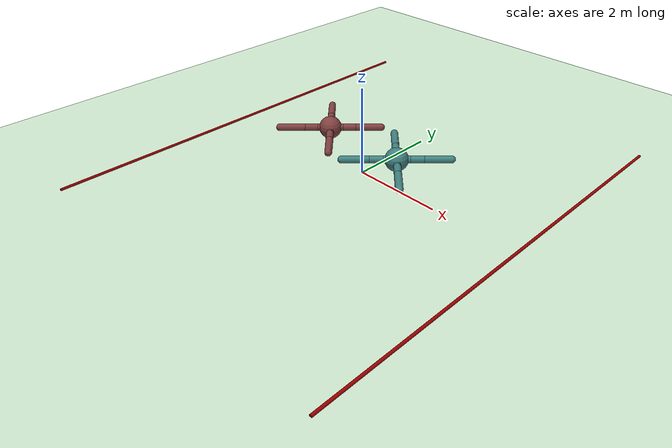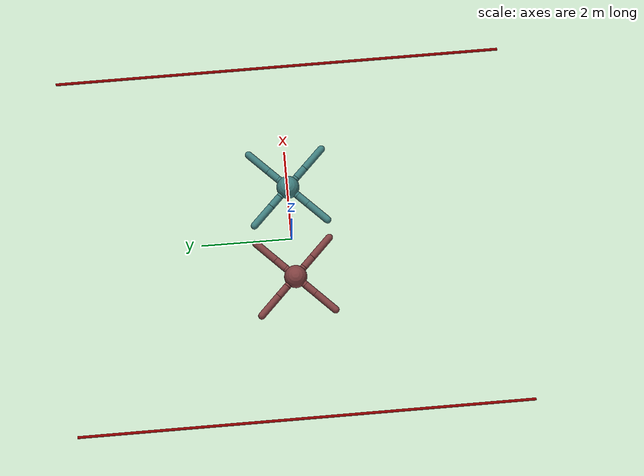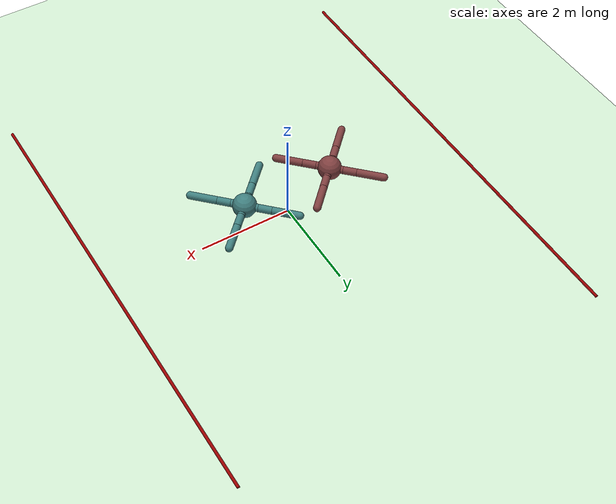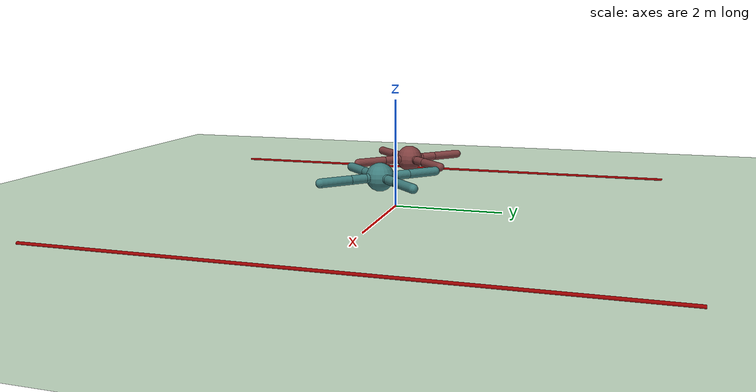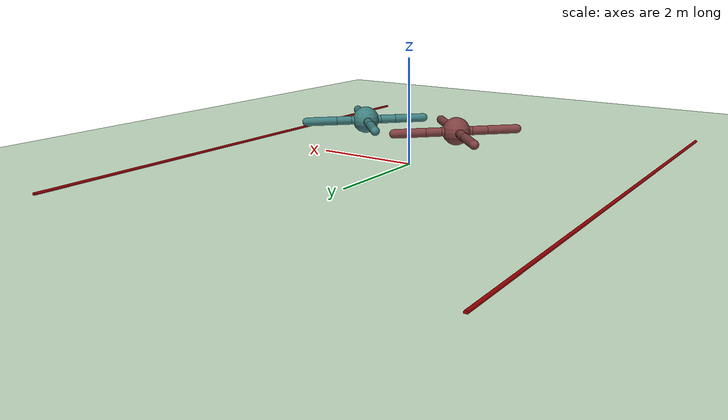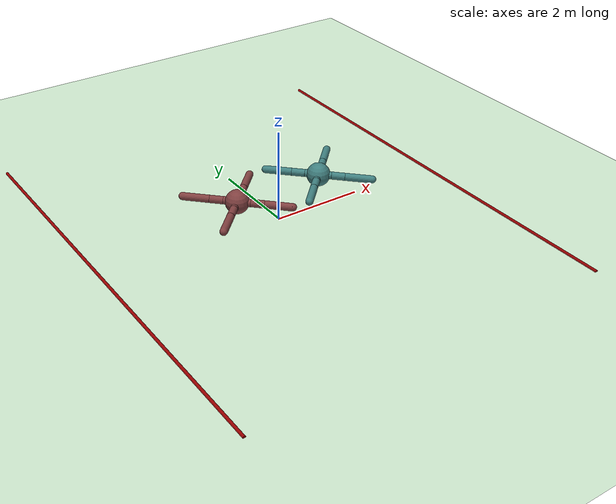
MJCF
<mujoco model="mutiagent_world">
  <compiler angle="degree" coordinate="local" inertiafromgeom="true" />
  <option integrator="RK4" timestep="0.003" solver="PGS" iterations="1000" />

  <default>
    <joint armature="1" damping="1" limited="true" />
  <default class="agent0"><joint armature="1" damping="1" limited="true" />
    <geom conaffinity="0" condim="3" density="5.0" friction="1 0.5 0.5" margin="0.01" rgba="0.5 0.25 0.25 1" />
  </default><default class="agent1"><joint armature="1" damping="1" limited="true" />
    <geom conaffinity="0" condim="3" density="5.0" friction="1 0.5 0.5" margin="0.01" rgba="0.25 0.5 0.5 1" />
  </default></default>
  <asset>
    <texture builtin="gradient" height="100" rgb1="1 1 1" rgb2="0 0 0" type="skybox" width="100" />
    <texture builtin="flat" height="1278" mark="cross" markrgb="1 1 1" name="texgeom" random="0.01" rgb1=".1 .1 .1" rgb2=".3 .3 0.3" type="cube" width="127" />
    <texture builtin="checker" height="100" name="texplane" rgb1=".1 .1 .1" rgb2=".3 .3 0.3" type="2d" width="100" />
    <material name="MatPlane" reflectance="0.5" shininess="1" specular="1" texrepeat="60 60" texture="texplane" />
    <material name="geom" texture="texgeom" texuniform="true" />
  </asset>
  <worldbody>
    <light cutoff="100" diffuse="1 1 1" dir="-0 0 -1.3" directional="true" exponent="1" pos="0 0 1.3" specular=".1 .1 .1" />
    <geom contype="1" conaffinity="1" friction="1 .1 .1" condim="3" material="MatPlane" name="floor" pos="0 0 0" rgba="0.8 0.9 0.8 1" size="20 20 0.125" type="plane" />
    <geom fromto="4 -5 0  4 +5 0" name="rightgoal" rgba="0.6 0.0 0.0 1" size=".03" type="cylinder" />
    <geom fromto="-4 -5 0  -4 +5 0" name="leftgoal" rgba="0.6 0.0 0.0 1" size=".03" type="cylinder" />
  <body name="agent0/torso" pos="-1 0 0.75">
      <camera name="agent0/track" mode="trackcom" pos="0 -3 0.3" xyaxes="1 0 0 0 0 1" />
      <geom name="agent0/torso_geom" pos="0 0 0" size="0.25" type="sphere" class="agent0" />
      <joint armature="0" damping="0" limited="false" margin="0.01" name="agent0/root" pos="0 0 0" type="free" />
      <body name="agent0/front_left_leg" pos="0 0 0">
        <geom fromto="0.0 0.0 0.0 0.2 0.2 0.0" name="agent0/aux_1_geom" size="0.08" type="capsule" class="agent0" />
        <body name="agent0/aux_1" pos="0.2 0.2 0">
          <joint axis="0 0 1" name="agent0/hip_1" pos="0.0 0.0 0.0" range="-30 30" type="hinge" />
          <geom fromto="0.0 0.0 0.0 0.2 0.2 0.0" name="agent0/left_leg_geom" size="0.08" type="capsule" class="agent0" />
          <body pos="0.2 0.2 0" name="agent0/anon1416026134">
            <joint axis="-1 1 0" name="agent0/ankle_1" pos="0.0 0.0 0.0" range="30 70" type="hinge" />
            <geom fromto="0.0 0.0 0.0 0.4 0.4 0.0" name="agent0/left_ankle_geom" size="0.08" type="capsule" class="agent0" />
          </body>
        </body>
      </body>
      <body name="agent0/front_right_leg" pos="0 0 0">
        <geom fromto="0.0 0.0 0.0 -0.2 0.2 0.0" name="agent0/aux_2_geom" size="0.08" type="capsule" class="agent0" />
        <body name="agent0/aux_2" pos="-0.2 0.2 0">
          <joint axis="0 0 1" name="agent0/hip_2" pos="0.0 0.0 0.0" range="-30 30" type="hinge" />
          <geom fromto="0.0 0.0 0.0 -0.2 0.2 0.0" name="agent0/right_leg_geom" size="0.08" type="capsule" class="agent0" />
          <body pos="-0.2 0.2 0" name="agent0/anon7296243063">
            <joint axis="1 1 0" name="agent0/ankle_2" pos="0.0 0.0 0.0" range="-70 -30" type="hinge" />
            <geom fromto="0.0 0.0 0.0 -0.4 0.4 0.0" name="agent0/right_ankle_geom" size="0.08" type="capsule" class="agent0" />
          </body>
        </body>
      </body>
      <body name="agent0/back_leg" pos="0 0 0">
        <geom fromto="0.0 0.0 0.0 -0.2 -0.2 0.0" name="agent0/aux_3_geom" size="0.08" type="capsule" class="agent0" />
        <body name="agent0/aux_3" pos="-0.2 -0.2 0">
          <joint axis="0 0 1" name="agent0/hip_3" pos="0.0 0.0 0.0" range="-30 30" type="hinge" />
          <geom fromto="0.0 0.0 0.0 -0.2 -0.2 0.0" name="agent0/back_leg_geom" size="0.08" type="capsule" class="agent0" />
          <body pos="-0.2 -0.2 0" name="agent0/anon3686070806">
            <joint axis="-1 1 0" name="agent0/ankle_3" pos="0.0 0.0 0.0" range="-70 -30" type="hinge" />
            <geom fromto="0.0 0.0 0.0 -0.4 -0.4 0.0" name="agent0/third_ankle_geom" size="0.08" type="capsule" class="agent0" />
          </body>
        </body>
      </body>
      <body name="agent0/right_back_leg" pos="0 0 0">
        <geom fromto="0.0 0.0 0.0 0.2 -0.2 0.0" name="agent0/aux_4_geom" size="0.08" type="capsule" class="agent0" />
        <body name="agent0/aux_4" pos="0.2 -0.2 0">
          <joint axis="0 0 1" name="agent0/hip_4" pos="0.0 0.0 0.0" range="-30 30" type="hinge" />
          <geom fromto="0.0 0.0 0.0 0.2 -0.2 0.0" name="agent0/rightback_leg_geom" size="0.08" type="capsule" class="agent0" />
          <body pos="0.2 -0.2 0" name="agent0/anon626265857">
            <joint axis="1 1 0" name="agent0/ankle_4" pos="0.0 0.0 0.0" range="30 70" type="hinge" />
            <geom fromto="0.0 0.0 0.0 0.4 -0.4 0.0" name="agent0/fourth_ankle_geom" size="0.08" type="capsule" class="agent0" />
          </body>
        </body>
      </body>
    </body>
  <body name="agent1/torso" pos="1 0 0.75">
      <camera name="agent1/track" mode="trackcom" pos="0 -3 0.3" xyaxes="1 0 0 0 0 1" />
      <geom name="agent1/torso_geom" pos="0 0 0" size="0.25" type="sphere" class="agent1" />
      <joint armature="0" damping="0" limited="false" margin="0.01" name="agent1/root" pos="0 0 0" type="free" />
      <body name="agent1/front_left_leg" pos="0 0 0">
        <geom fromto="0.0 0.0 0.0 0.2 0.2 0.0" name="agent1/aux_1_geom" size="0.08" type="capsule" class="agent1" />
        <body name="agent1/aux_1" pos="0.2 0.2 0">
          <joint axis="0 0 1" name="agent1/hip_1" pos="0.0 0.0 0.0" range="-30 30" type="hinge" />
          <geom fromto="0.0 0.0 0.0 0.2 0.2 0.0" name="agent1/left_leg_geom" size="0.08" type="capsule" class="agent1" />
          <body pos="0.2 0.2 0" name="agent1/anon5382594944">
            <joint axis="-1 1 0" name="agent1/ankle_1" pos="0.0 0.0 0.0" range="30 70" type="hinge" />
            <geom fromto="0.0 0.0 0.0 0.4 0.4 0.0" name="agent1/left_ankle_geom" size="0.08" type="capsule" class="agent1" />
          </body>
        </body>
      </body>
      <body name="agent1/front_right_leg" pos="0 0 0">
        <geom fromto="0.0 0.0 0.0 -0.2 0.2 0.0" name="agent1/aux_2_geom" size="0.08" type="capsule" class="agent1" />
        <body name="agent1/aux_2" pos="-0.2 0.2 0">
          <joint axis="0 0 1" name="agent1/hip_2" pos="0.0 0.0 0.0" range="-30 30" type="hinge" />
          <geom fromto="0.0 0.0 0.0 -0.2 0.2 0.0" name="agent1/right_leg_geom" size="0.08" type="capsule" class="agent1" />
          <body pos="-0.2 0.2 0" name="agent1/anon6183892297">
            <joint axis="1 1 0" name="agent1/ankle_2" pos="0.0 0.0 0.0" range="-70 -30" type="hinge" />
            <geom fromto="0.0 0.0 0.0 -0.4 0.4 0.0" name="agent1/right_ankle_geom" size="0.08" type="capsule" class="agent1" />
          </body>
        </body>
      </body>
      <body name="agent1/back_leg" pos="0 0 0">
        <geom fromto="0.0 0.0 0.0 -0.2 -0.2 0.0" name="agent1/aux_3_geom" size="0.08" type="capsule" class="agent1" />
        <body name="agent1/aux_3" pos="-0.2 -0.2 0">
          <joint axis="0 0 1" name="agent1/hip_3" pos="0.0 0.0 0.0" range="-30 30" type="hinge" />
          <geom fromto="0.0 0.0 0.0 -0.2 -0.2 0.0" name="agent1/back_leg_geom" size="0.08" type="capsule" class="agent1" />
          <body pos="-0.2 -0.2 0" name="agent1/anon7916871580">
            <joint axis="-1 1 0" name="agent1/ankle_3" pos="0.0 0.0 0.0" range="-70 -30" type="hinge" />
            <geom fromto="0.0 0.0 0.0 -0.4 -0.4 0.0" name="agent1/third_ankle_geom" size="0.08" type="capsule" class="agent1" />
          </body>
        </body>
      </body>
      <body name="agent1/right_back_leg" pos="0 0 0">
        <geom fromto="0.0 0.0 0.0 0.2 -0.2 0.0" name="agent1/aux_4_geom" size="0.08" type="capsule" class="agent1" />
        <body name="agent1/aux_4" pos="0.2 -0.2 0">
          <joint axis="0 0 1" name="agent1/hip_4" pos="0.0 0.0 0.0" range="-30 30" type="hinge" />
          <geom fromto="0.0 0.0 0.0 0.2 -0.2 0.0" name="agent1/rightback_leg_geom" size="0.08" type="capsule" class="agent1" />
          <body pos="0.2 -0.2 0" name="agent1/anon6151094296">
            <joint axis="1 1 0" name="agent1/ankle_4" pos="0.0 0.0 0.0" range="30 70" type="hinge" />
            <geom fromto="0.0 0.0 0.0 0.4 -0.4 0.0" name="agent1/fourth_ankle_geom" size="0.08" type="capsule" class="agent1" />
          </body>
        </body>
      </body>
    </body>
  </worldbody>
<actuator>
    <motor ctrllimited="true" ctrlrange="-1.0 1.0" joint="agent0/hip_4" gear="150" class="agent0" />
    <motor ctrllimited="true" ctrlrange="-1.0 1.0" joint="agent0/ankle_4" gear="150" class="agent0" />
    <motor ctrllimited="true" ctrlrange="-1.0 1.0" joint="agent0/hip_1" gear="150" class="agent0" />
    <motor ctrllimited="true" ctrlrange="-1.0 1.0" joint="agent0/ankle_1" gear="150" class="agent0" />
    <motor ctrllimited="true" ctrlrange="-1.0 1.0" joint="agent0/hip_2" gear="150" class="agent0" />
    <motor ctrllimited="true" ctrlrange="-1.0 1.0" joint="agent0/ankle_2" gear="150" class="agent0" />
    <motor ctrllimited="true" ctrlrange="-1.0 1.0" joint="agent0/hip_3" gear="150" class="agent0" />
    <motor ctrllimited="true" ctrlrange="-1.0 1.0" joint="agent0/ankle_3" gear="150" class="agent0" />
  <motor ctrllimited="true" ctrlrange="-1.0 1.0" joint="agent1/hip_4" gear="150" class="agent1" />
    <motor ctrllimited="true" ctrlrange="-1.0 1.0" joint="agent1/ankle_4" gear="150" class="agent1" />
    <motor ctrllimited="true" ctrlrange="-1.0 1.0" joint="agent1/hip_1" gear="150" class="agent1" />
    <motor ctrllimited="true" ctrlrange="-1.0 1.0" joint="agent1/ankle_1" gear="150" class="agent1" />
    <motor ctrllimited="true" ctrlrange="-1.0 1.0" joint="agent1/hip_2" gear="150" class="agent1" />
    <motor ctrllimited="true" ctrlrange="-1.0 1.0" joint="agent1/ankle_2" gear="150" class="agent1" />
    <motor ctrllimited="true" ctrlrange="-1.0 1.0" joint="agent1/hip_3" gear="150" class="agent1" />
    <motor ctrllimited="true" ctrlrange="-1.0 1.0" joint="agent1/ankle_3" gear="150" class="agent1" />
  </actuator>
</mujoco>
